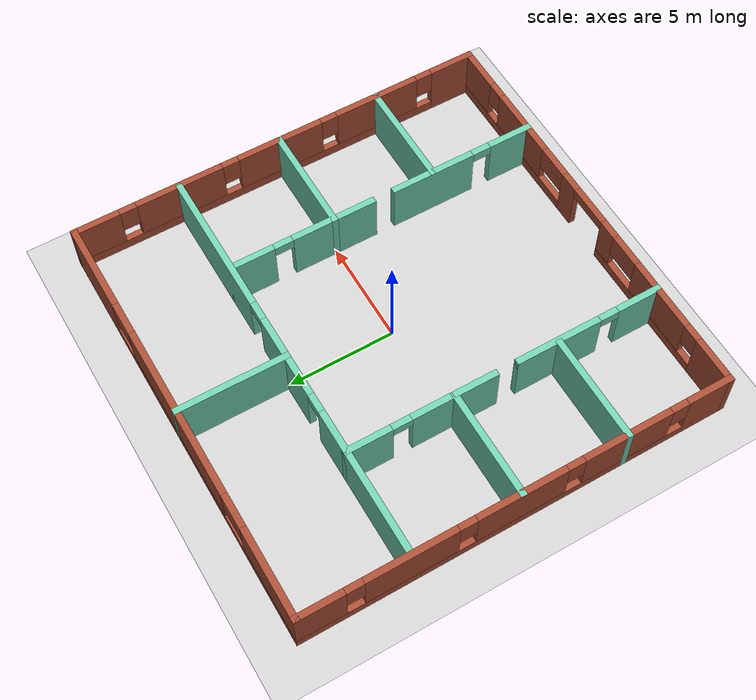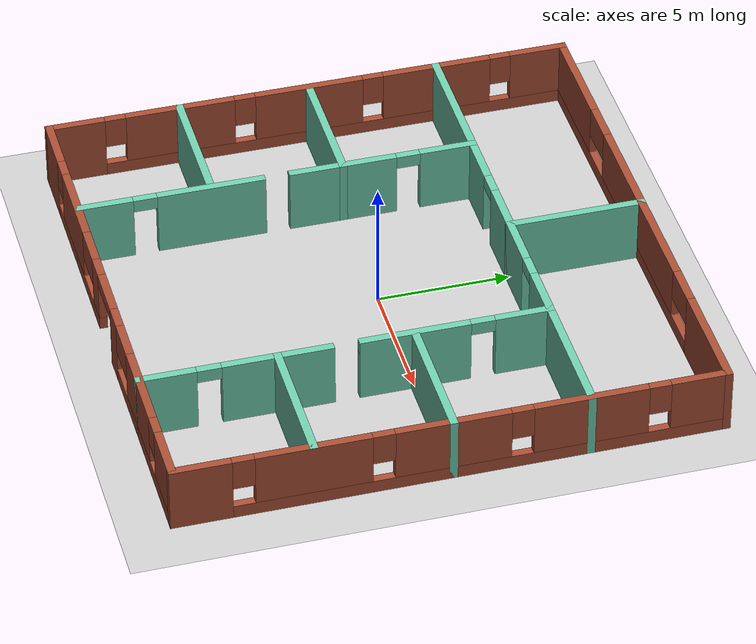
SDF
<sdf version="1.7">
 <world name="default">
  <model name="ground_plane">
   <static>1</static>
   <link name="link">
    <collision name="collision">
     <geometry><plane><normal>0 0 1</normal><size>100 100</size></plane></geometry>
     <surface>
      <contact><collide_bitmask>65535</collide_bitmask></contact>
      <friction><ode><mu>100</mu><mu2>50</mu2></ode></friction>
     </surface>
    </collision>
    <visual name="visual">
     <cast_shadows>0</cast_shadows>
     <geometry><plane><normal>0 0 1</normal><size>100 100</size></plane></geometry>
     <material>
      <script><uri>file://media/materials/scripts/gazebo.material</uri><name>Gazebo/Grey</name></script>
     </material>
    </visual>
   </link>
  </model>
  <model name="Building">
   <link name="Wall_0">
    <pose>0 10 0 0 -0 3.14159</pose>
    <visual name="Wall_0_Visual_0">
     <pose>-7.975 0 1.25 0 -0 0</pose>
     <geometry><box><size>4.35 0.3 2.5</size></box></geometry>
     <material>
      <script><uri>file://media/materials/scripts/gazebo.material</uri><name>Gazebo/Bricks</name></script>
      <ambient>1 1 1 1</ambient>
     </material>
     <meta><layer>0</layer></meta>
    </visual>
    <collision name="Wall_0_Collision_0">
     <geometry><box><size>4.35 0.3 2.5</size></box></geometry>
     <pose>-7.975 0 1.25 0 -0 0</pose>
    </collision>
    <visual name="Wall_0_Visual_1">
     <pose>2.175 0 0.25 0 -0 0</pose>
     <geometry><box><size>15.95 0.3 0.5</size></box></geometry>
     <material>
      <script><uri>file://media/materials/scripts/gazebo.material</uri><name>Gazebo/Bricks</name></script>
      <ambient>1 1 1 1</ambient>
     </material>
     <meta><layer>0</layer></meta>
    </visual>
    <collision name="Wall_0_Collision_1">
     <geometry><box><size>15.95 0.3 0.5</size></box></geometry>
     <pose>2.175 0 0.25 0 -0 0</pose>
    </collision>
    <visual name="Wall_0_Visual_2">
     <pose>0 0 1.5 0 -0 0</pose>
     <geometry><box><size>8.4 0.3 2</size></box></geometry>
     <material>
      <script><uri>file://media/materials/scripts/gazebo.material</uri><name>Gazebo/Bricks</name></script>
      <ambient>1 1 1 1</ambient>
     </material>
     <meta><layer>0</layer></meta>
    </visual>
    <collision name="Wall_0_Collision_2">
     <geometry><box><size>8.4 0.3 2</size></box></geometry>
     <pose>0 0 1.5 0 -0 0</pose>
    </collision>
    <visual name="Wall_0_Visual_3">
     <pose>7.975 0 1.5 0 -0 0</pose>
     <geometry><box><size>4.35 0.3 2</size></box></geometry>
     <material>
      <script><uri>file://media/materials/scripts/gazebo.material</uri><name>Gazebo/Bricks</name></script>
      <ambient>1 1 1 1</ambient>
     </material>
     <meta><layer>0</layer></meta>
    </visual>
    <collision name="Wall_0_Collision_3">
     <geometry><box><size>4.35 0.3 2</size></box></geometry>
     <pose>7.975 0 1.5 0 -0 0</pose>
    </collision>
    <visual name="Wall_0_Visual_4">
     <pose>-5 0 1.9 0 -0 0</pose>
     <geometry><box><size>1.6 0.3 1.2</size></box></geometry>
     <material>
      <script><uri>file://media/materials/scripts/gazebo.material</uri><name>Gazebo/Bricks</name></script>
      <ambient>1 1 1 1</ambient>
     </material>
     <meta><layer>0</layer></meta>
    </visual>
    <collision name="Wall_0_Collision_4">
     <geometry><box><size>1.6 0.3 1.2</size></box></geometry>
     <pose>-5 0 1.9 0 -0 0</pose>
    </collision>
    <visual name="Wall_0_Visual_5">
     <pose>5 0 1.9 0 -0 0</pose>
     <geometry><box><size>1.6 0.3 1.2</size></box></geometry>
     <material>
      <script><uri>file://media/materials/scripts/gazebo.material</uri><name>Gazebo/Bricks</name></script>
      <ambient>1 1 1 1</ambient>
     </material>
     <meta><layer>0</layer></meta>
    </visual>
    <collision name="Wall_0_Collision_5">
     <geometry><box><size>1.6 0.3 1.2</size></box></geometry>
     <pose>5 0 1.9 0 -0 0</pose>
    </collision>
   </link>
   <link name="Wall_12">
    <pose>-5 -2.5 0 0 -0 1.5708</pose>
    <visual name="Wall_12_Visual_0">
     <pose>-6.55 0 1.25 0 -0 0</pose>
     <geometry><box><size>2.2 0.3 2.5</size></box></geometry>
     <material>
      <script><uri>file://media/materials/scripts/gazebo.material</uri><name>Gazebo/Grey</name></script>
      <ambient>0.435294 0.796078 0.67451 1</ambient>
     </material>
     <meta><layer>0</layer></meta>
    </visual>
    <collision name="Wall_12_Collision_0">
     <geometry><box><size>2.2 0.3 2.5</size></box></geometry>
     <pose>-6.55 0 1.25 0 -0 0</pose>
    </collision>
    <visual name="Wall_12_Visual_1">
     <pose>-2.5 0 1.25 0 -0 0</pose>
     <geometry><box><size>4.1 0.3 2.5</size></box></geometry>
     <material>
      <script><uri>file://media/materials/scripts/gazebo.material</uri><name>Gazebo/Grey</name></script>
      <ambient>0.435294 0.796078 0.67451 1</ambient>
     </material>
     <meta><layer>0</layer></meta>
    </visual>
    <collision name="Wall_12_Collision_1">
     <geometry><box><size>4.1 0.3 2.5</size></box></geometry>
     <pose>-2.5 0 1.25 0 -0 0</pose>
    </collision>
    <visual name="Wall_12_Visual_2">
     <pose>2.5 0 1.25 0 -0 0</pose>
     <geometry><box><size>4.1 0.3 2.5</size></box></geometry>
     <material>
      <script><uri>file://media/materials/scripts/gazebo.material</uri><name>Gazebo/Grey</name></script>
      <ambient>0.435294 0.796078 0.67451 1</ambient>
     </material>
     <meta><layer>0</layer></meta>
    </visual>
    <collision name="Wall_12_Collision_2">
     <geometry><box><size>4.1 0.3 2.5</size></box></geometry>
     <pose>2.5 0 1.25 0 -0 0</pose>
    </collision>
    <visual name="Wall_12_Visual_3">
     <pose>6.55 0 1.25 0 -0 0</pose>
     <geometry><box><size>2.2 0.3 2.5</size></box></geometry>
     <material>
      <script><uri>file://media/materials/scripts/gazebo.material</uri><name>Gazebo/Grey</name></script>
      <ambient>0.435294 0.796078 0.67451 1</ambient>
     </material>
     <meta><layer>0</layer></meta>
    </visual>
    <collision name="Wall_12_Collision_3">
     <geometry><box><size>2.2 0.3 2.5</size></box></geometry>
     <pose>6.55 0 1.25 0 -0 0</pose>
    </collision>
    <visual name="Wall_12_Visual_4">
     <pose>-5 0 2.25 0 -0 0</pose>
     <geometry><box><size>0.9 0.3 0.5</size></box></geometry>
     <material>
      <script><uri>file://media/materials/scripts/gazebo.material</uri><name>Gazebo/Grey</name></script>
      <ambient>0.435294 0.796078 0.67451 1</ambient>
     </material>
     <meta><layer>0</layer></meta>
    </visual>
    <collision name="Wall_12_Collision_4">
     <geometry><box><size>0.9 0.3 0.5</size></box></geometry>
     <pose>-5 0 2.25 0 -0 0</pose>
    </collision>
    <visual name="Wall_12_Visual_5">
     <pose>-0.45 0 2.25 0 -0 0</pose>
     <geometry><box><size>0 0.3 0.5</size></box></geometry>
     <material>
      <script><uri>file://media/materials/scripts/gazebo.material</uri><name>Gazebo/Grey</name></script>
      <ambient>0.435294 0.796078 0.67451 1</ambient>
     </material>
     <meta><layer>0</layer></meta>
    </visual>
    <collision name="Wall_12_Collision_5">
     <geometry><box><size>0 0.3 0.5</size></box></geometry>
     <pose>-0.45 0 2.25 0 -0 0</pose>
    </collision>
    <visual name="Wall_12_Visual_6">
     <pose>5 0 2.25 0 -0 0</pose>
     <geometry><box><size>0.9 0.3 0.5</size></box></geometry>
     <material>
      <script><uri>file://media/materials/scripts/gazebo.material</uri><name>Gazebo/Grey</name></script>
      <ambient>0.435294 0.796078 0.67451 1</ambient>
     </material>
     <meta><layer>0</layer></meta>
    </visual>
    <collision name="Wall_12_Collision_6">
     <geometry><box><size>0.9 0.3 0.5</size></box></geometry>
     <pose>5 0 2.25 0 -0 0</pose>
    </collision>
   </link>
   <link name="Wall_14">
    <pose>5 -2.5 0 0 0 -1.5708</pose>
    <visual name="Wall_14_Visual_0">
     <pose>-6.55 0 1.25 0 -0 0</pose>
     <geometry><box><size>2.2 0.3 2.5</size></box></geometry>
     <material>
      <script><uri>file://media/materials/scripts/gazebo.material</uri><name>Gazebo/Grey</name></script>
      <ambient>0.435294 0.796078 0.67451 1</ambient>
     </material>
     <meta><layer>0</layer></meta>
    </visual>
    <collision name="Wall_14_Collision_0">
     <geometry><box><size>2.2 0.3 2.5</size></box></geometry>
     <pose>-6.55 0 1.25 0 -0 0</pose>
    </collision>
    <visual name="Wall_14_Visual_1">
     <pose>-2.5 0 1.25 0 -0 0</pose>
     <geometry><box><size>4.1 0.3 2.5</size></box></geometry>
     <material>
      <script><uri>file://media/materials/scripts/gazebo.material</uri><name>Gazebo/Grey</name></script>
      <ambient>0.435294 0.796078 0.67451 1</ambient>
     </material>
     <meta><layer>0</layer></meta>
    </visual>
    <collision name="Wall_14_Collision_1">
     <geometry><box><size>4.1 0.3 2.5</size></box></geometry>
     <pose>-2.5 0 1.25 0 -0 0</pose>
    </collision>
    <visual name="Wall_14_Visual_2">
     <pose>2.5 0 1.25 0 -0 0</pose>
     <geometry><box><size>4.1 0.3 2.5</size></box></geometry>
     <material>
      <script><uri>file://media/materials/scripts/gazebo.material</uri><name>Gazebo/Grey</name></script>
      <ambient>0.435294 0.796078 0.67451 1</ambient>
     </material>
     <meta><layer>0</layer></meta>
    </visual>
    <collision name="Wall_14_Collision_2">
     <geometry><box><size>4.1 0.3 2.5</size></box></geometry>
     <pose>2.5 0 1.25 0 -0 0</pose>
    </collision>
    <visual name="Wall_14_Visual_3">
     <pose>6.55 0 1.25 0 -0 0</pose>
     <geometry><box><size>2.2 0.3 2.5</size></box></geometry>
     <material>
      <script><uri>file://media/materials/scripts/gazebo.material</uri><name>Gazebo/Grey</name></script>
      <ambient>0.435294 0.796078 0.67451 1</ambient>
     </material>
     <meta><layer>0</layer></meta>
    </visual>
    <collision name="Wall_14_Collision_3">
     <geometry><box><size>2.2 0.3 2.5</size></box></geometry>
     <pose>6.55 0 1.25 0 -0 0</pose>
    </collision>
    <visual name="Wall_14_Visual_4">
     <pose>-5 0 2.25 0 -0 0</pose>
     <geometry><box><size>0.9 0.3 0.5</size></box></geometry>
     <material>
      <script><uri>file://media/materials/scripts/gazebo.material</uri><name>Gazebo/Grey</name></script>
      <ambient>0.435294 0.796078 0.67451 1</ambient>
     </material>
     <meta><layer>0</layer></meta>
    </visual>
    <collision name="Wall_14_Collision_4">
     <geometry><box><size>0.9 0.3 0.5</size></box></geometry>
     <pose>-5 0 2.25 0 -0 0</pose>
    </collision>
    <visual name="Wall_14_Visual_5">
     <pose>-0.45 0 2.25 0 -0 0</pose>
     <geometry><box><size>0 0.3 0.5</size></box></geometry>
     <material>
      <script><uri>file://media/materials/scripts/gazebo.material</uri><name>Gazebo/Grey</name></script>
      <ambient>0.435294 0.796078 0.67451 1</ambient>
     </material>
     <meta><layer>0</layer></meta>
    </visual>
    <collision name="Wall_14_Collision_5">
     <geometry><box><size>0 0.3 0.5</size></box></geometry>
     <pose>-0.45 0 2.25 0 -0 0</pose>
    </collision>
    <visual name="Wall_14_Visual_6">
     <pose>5 0 2.25 0 -0 0</pose>
     <geometry><box><size>0.9 0.3 0.5</size></box></geometry>
     <material>
      <script><uri>file://media/materials/scripts/gazebo.material</uri><name>Gazebo/Grey</name></script>
      <ambient>0.435294 0.796078 0.67451 1</ambient>
     </material>
     <meta><layer>0</layer></meta>
    </visual>
    <collision name="Wall_14_Collision_6">
     <geometry><box><size>0.9 0.3 0.5</size></box></geometry>
     <pose>5 0 2.25 0 -0 0</pose>
    </collision>
   </link>
   <link name="Wall_16">
    <collision name="Wall_16_Collision">
     <geometry><box><size>5.3 0.3 2.5</size></box></geometry>
     <pose>0 0 1.25 0 -0 0</pose>
    </collision>
    <visual name="Wall_16_Visual">
     <pose>0 0 1.25 0 -0 0</pose>
     <geometry><box><size>5.3 0.3 2.5</size></box></geometry>
     <material>
      <script><uri>file://media/materials/scripts/gazebo.material</uri><name>Gazebo/Grey</name></script>
      <ambient>0.435294 0.796078 0.67451 1</ambient>
     </material>
     <meta><layer>0</layer></meta>
    </visual>
    <pose>0 7.5 0 0 -0 1.5708</pose>
   </link>
   <link name="Wall_19">
    <collision name="Wall_19_Collision">
     <geometry><box><size>5.3 0.3 2.5</size></box></geometry>
     <pose>0 0 1.25 0 -0 0</pose>
    </collision>
    <visual name="Wall_19_Visual">
     <pose>0 0 1.25 0 -0 0</pose>
     <geometry><box><size>5.3 0.3 2.5</size></box></geometry>
     <material>
      <script><uri>file://media/materials/scripts/gazebo.material</uri><name>Gazebo/Grey</name></script>
      <ambient>0.435294 0.796078 0.67451 1</ambient>
     </material>
     <meta><layer>0</layer></meta>
    </visual>
    <pose>-7.5 -5 0 0 -0 0</pose>
   </link>
   <link name="Wall_2">
    <pose>0 -10 0 0 -0 0</pose>
    <visual name="Wall_2_Visual_0">
     <pose>-9.025 0 1.25 0 -0 0</pose>
     <geometry><box><size>2.25 0.3 2.5</size></box></geometry>
     <material>
      <script><uri>file://media/materials/scripts/gazebo.material</uri><name>Gazebo/Bricks</name></script>
      <ambient>1 1 1 1</ambient>
     </material>
     <meta><layer>0</layer></meta>
    </visual>
    <collision name="Wall_2_Collision_0">
     <geometry><box><size>2.25 0.3 2.5</size></box></geometry>
     <pose>-9.025 0 1.25 0 -0 0</pose>
    </collision>
    <visual name="Wall_2_Visual_1">
     <pose>1.46321 0 1.25 0 -0 0</pose>
     <geometry><box><size>0.973589 0.3 2.5</size></box></geometry>
     <material>
      <script><uri>file://media/materials/scripts/gazebo.material</uri><name>Gazebo/Bricks</name></script>
      <ambient>1 1 1 1</ambient>
     </material>
     <meta><layer>0</layer></meta>
    </visual>
    <collision name="Wall_2_Collision_1">
     <geometry><box><size>0.973589 0.3 2.5</size></box></geometry>
     <pose>1.46321 0 1.25 0 -0 0</pose>
    </collision>
    <visual name="Wall_2_Visual_2">
     <pose>-4.4618 0 0.25 0 -0 0</pose>
     <geometry><box><size>6.87641 0.3 0.5</size></box></geometry>
     <material>
      <script><uri>file://media/materials/scripts/gazebo.material</uri><name>Gazebo/Bricks</name></script>
      <ambient>1 1 1 1</ambient>
     </material>
     <meta><layer>0</layer></meta>
    </visual>
    <collision name="Wall_2_Collision_2">
     <geometry><box><size>6.87641 0.3 0.5</size></box></geometry>
     <pose>-4.4618 0 0.25 0 -0 0</pose>
    </collision>
    <visual name="Wall_2_Visual_3">
     <pose>6.05 0 0.25 0 -0 0</pose>
     <geometry><box><size>8.2 0.3 0.5</size></box></geometry>
     <material>
      <script><uri>file://media/materials/scripts/gazebo.material</uri><name>Gazebo/Bricks</name></script>
      <ambient>1 1 1 1</ambient>
     </material>
     <meta><layer>0</layer></meta>
    </visual>
    <collision name="Wall_2_Collision_3">
     <geometry><box><size>8.2 0.3 0.5</size></box></geometry>
     <pose>6.05 0 0.25 0 -0 0</pose>
    </collision>
    <visual name="Wall_2_Visual_4">
     <pose>-5.325 0 1.5 0 -0 0</pose>
     <geometry><box><size>3.55 0.3 2</size></box></geometry>
     <material>
      <script><uri>file://media/materials/scripts/gazebo.material</uri><name>Gazebo/Bricks</name></script>
      <ambient>1 1 1 1</ambient>
     </material>
     <meta><layer>0</layer></meta>
    </visual>
    <collision name="Wall_2_Collision_4">
     <geometry><box><size>3.55 0.3 2</size></box></geometry>
     <pose>-5.325 0 1.5 0 -0 0</pose>
    </collision>
    <visual name="Wall_2_Visual_5">
     <pose>-1.4868 0 1.5 0 -0 0</pose>
     <geometry><box><size>0.926411 0.3 2</size></box></geometry>
     <material>
      <script><uri>file://media/materials/scripts/gazebo.material</uri><name>Gazebo/Bricks</name></script>
      <ambient>1 1 1 1</ambient>
     </material>
     <meta><layer>0</layer></meta>
    </visual>
    <collision name="Wall_2_Collision_5">
     <geometry><box><size>0.926411 0.3 2</size></box></geometry>
     <pose>-1.4868 0 1.5 0 -0 0</pose>
    </collision>
    <visual name="Wall_2_Visual_6">
     <pose>-1.4868 0 1.5 0 -0 0</pose>
     <geometry><box><size>0.926411 0.3 2</size></box></geometry>
     <material>
      <script><uri>file://media/materials/scripts/gazebo.material</uri><name>Gazebo/Bricks</name></script>
      <ambient>1 1 1 1</ambient>
     </material>
     <meta><layer>0</layer></meta>
    </visual>
    <collision name="Wall_2_Collision_6">
     <geometry><box><size>0.926411 0.3 2</size></box></geometry>
     <pose>-1.4868 0 1.5 0 -0 0</pose>
    </collision>
    <visual name="Wall_2_Visual_7">
     <pose>5.325 0 1.5 0 -0 0</pose>
     <geometry><box><size>3.55 0.3 2</size></box></geometry>
     <material>
      <script><uri>file://media/materials/scripts/gazebo.material</uri><name>Gazebo/Bricks</name></script>
      <ambient>1 1 1 1</ambient>
     </material>
     <meta><layer>0</layer></meta>
    </visual>
    <collision name="Wall_2_Collision_7">
     <geometry><box><size>3.55 0.3 2</size></box></geometry>
     <pose>5.325 0 1.5 0 -0 0</pose>
    </collision>
    <visual name="Wall_2_Visual_8">
     <pose>9.025 0 1.5 0 -0 0</pose>
     <geometry><box><size>2.25 0.3 2</size></box></geometry>
     <material>
      <script><uri>file://media/materials/scripts/gazebo.material</uri><name>Gazebo/Bricks</name></script>
      <ambient>1 1 1 1</ambient>
     </material>
     <meta><layer>0</layer></meta>
    </visual>
    <collision name="Wall_2_Collision_8">
     <geometry><box><size>2.25 0.3 2</size></box></geometry>
     <pose>9.025 0 1.5 0 -0 0</pose>
    </collision>
    <visual name="Wall_2_Visual_9">
     <pose>-7.5 0 1.9 0 -0 0</pose>
     <geometry><box><size>0.8 0.3 1.2</size></box></geometry>
     <material>
      <script><uri>file://media/materials/scripts/gazebo.material</uri><name>Gazebo/Bricks</name></script>
      <ambient>1 1 1 1</ambient>
     </material>
     <meta><layer>0</layer></meta>
    </visual>
    <collision name="Wall_2_Collision_9">
     <geometry><box><size>0.8 0.3 1.2</size></box></geometry>
     <pose>-7.5 0 1.9 0 -0 0</pose>
    </collision>
    <visual name="Wall_2_Visual_10">
     <pose>2.75 0 1.9 0 -0 0</pose>
     <geometry><box><size>1.6 0.3 1.2</size></box></geometry>
     <material>
      <script><uri>file://media/materials/scripts/gazebo.material</uri><name>Gazebo/Bricks</name></script>
      <ambient>1 1 1 1</ambient>
     </material>
     <meta><layer>0</layer></meta>
    </visual>
    <collision name="Wall_2_Collision_10">
     <geometry><box><size>1.6 0.3 1.2</size></box></geometry>
     <pose>2.75 0 1.9 0 -0 0</pose>
    </collision>
    <visual name="Wall_2_Visual_11">
     <pose>-2.75 0 1.9 0 -0 0</pose>
     <geometry><box><size>1.6 0.3 1.2</size></box></geometry>
     <material>
      <script><uri>file://media/materials/scripts/gazebo.material</uri><name>Gazebo/Bricks</name></script>
      <ambient>1 1 1 1</ambient>
     </material>
     <meta><layer>0</layer></meta>
    </visual>
    <collision name="Wall_2_Collision_11">
     <geometry><box><size>1.6 0.3 1.2</size></box></geometry>
     <pose>-2.75 0 1.9 0 -0 0</pose>
    </collision>
    <visual name="Wall_2_Visual_12">
     <pose>7.5 0 1.9 0 -0 0</pose>
     <geometry><box><size>0.8 0.3 1.2</size></box></geometry>
     <material>
      <script><uri>file://media/materials/scripts/gazebo.material</uri><name>Gazebo/Bricks</name></script>
      <ambient>1 1 1 1</ambient>
     </material>
     <meta><layer>0</layer></meta>
    </visual>
    <collision name="Wall_2_Collision_12">
     <geometry><box><size>0.8 0.3 1.2</size></box></geometry>
     <pose>7.5 0 1.9 0 -0 0</pose>
    </collision>
    <visual name="Wall_2_Visual_13">
     <pose>-0.023589 0 2.25 0 -0 0</pose>
     <geometry><box><size>2 0.3 0.5</size></box></geometry>
     <material>
      <script><uri>file://media/materials/scripts/gazebo.material</uri><name>Gazebo/Bricks</name></script>
      <ambient>1 1 1 1</ambient>
     </material>
     <meta><layer>0</layer></meta>
    </visual>
    <collision name="Wall_2_Collision_13">
     <geometry><box><size>2 0.3 0.5</size></box></geometry>
     <pose>-0.023589 0 2.25 0 -0 0</pose>
    </collision>
    <visual name="Wall_2_Visual_14">
     <pose>-0.023589 0 2.25 0 -0 0</pose>
     <geometry><box><size>2 0.3 0.5</size></box></geometry>
     <material>
      <script><uri>file://media/materials/scripts/gazebo.material</uri><name>Gazebo/Bricks</name></script>
      <ambient>1 1 1 1</ambient>
     </material>
     <meta><layer>0</layer></meta>
    </visual>
    <collision name="Wall_2_Collision_14">
     <geometry><box><size>2 0.3 0.5</size></box></geometry>
     <pose>-0.023589 0 2.25 0 -0 0</pose>
    </collision>
   </link>
   <link name="Wall_21">
    <collision name="Wall_21_Collision">
     <geometry><box><size>5.3 0.3 2.5</size></box></geometry>
     <pose>0 0 1.25 0 -0 0</pose>
    </collision>
    <visual name="Wall_21_Visual">
     <pose>0 0 1.25 0 -0 0</pose>
     <geometry><box><size>5.3 0.3 2.5</size></box></geometry>
     <material>
      <script><uri>file://media/materials/scripts/gazebo.material</uri><name>Gazebo/Grey</name></script>
      <ambient>0.435294 0.796078 0.67451 1</ambient>
     </material>
     <meta><layer>0</layer></meta>
    </visual>
    <pose>7.5 -5 0 0 -0 0</pose>
   </link>
   <link name="Wall_22">
    <collision name="Wall_22_Collision">
     <geometry><box><size>0.268816 0.15 2.5</size></box></geometry>
     <pose>0 0 1.25 0 -0 0</pose>
    </collision>
    <visual name="Wall_22_Visual">
     <pose>0 0 1.25 0 -0 0</pose>
     <geometry><box><size>0.268816 0.15 2.5</size></box></geometry>
     <material>
      <script><uri>file://media/materials/scripts/gazebo.material</uri><name>Gazebo/Grey</name></script>
      <ambient>1 1 1 1</ambient>
     </material>
     <meta><layer>0</layer></meta>
    </visual>
    <pose>9.95756 -4.95843 0 0 -0 2.36663</pose>
   </link>
   <link name="Wall_23">
    <collision name="Wall_23_Collision">
     <geometry><box><size>0.268816 0.15 2.5</size></box></geometry>
     <pose>0 0 1.25 0 -0 0</pose>
    </collision>
    <visual name="Wall_23_Visual">
     <pose>0 0 1.25 0 -0 0</pose>
     <geometry><box><size>0.268816 0.15 2.5</size></box></geometry>
     <material>
      <script><uri>file://media/materials/scripts/gazebo.material</uri><name>Gazebo/Grey</name></script>
      <ambient>1 1 1 1</ambient>
     </material>
     <meta><layer>0</layer></meta>
    </visual>
    <pose>9.95756 -4.95843 0 0 0 -0.77496</pose>
   </link>
   <link name="Wall_25">
    <collision name="Wall_25_Collision">
     <geometry><box><size>5.3 0.3 2.5</size></box></geometry>
     <pose>0 0 1.25 0 -0 0</pose>
    </collision>
    <visual name="Wall_25_Visual">
     <pose>0 0 1.25 0 -0 0</pose>
     <geometry><box><size>5.3 0.3 2.5</size></box></geometry>
     <material>
      <script><uri>file://media/materials/scripts/gazebo.material</uri><name>Gazebo/Grey</name></script>
      <ambient>0.435294 0.796078 0.67451 1</ambient>
     </material>
     <meta><layer>0</layer></meta>
    </visual>
    <pose>-7.5 0 0 0 -0 0</pose>
   </link>
   <link name="Wall_27">
    <collision name="Wall_27_Collision">
     <geometry><box><size>5.3 0.3 2.5</size></box></geometry>
     <pose>0 0 1.25 0 -0 0</pose>
    </collision>
    <visual name="Wall_27_Visual">
     <pose>0 0 1.25 0 -0 0</pose>
     <geometry><box><size>5.3 0.3 2.5</size></box></geometry>
     <material>
      <script><uri>file://media/materials/scripts/gazebo.material</uri><name>Gazebo/Grey</name></script>
      <ambient>0.435294 0.796078 0.67451 1</ambient>
     </material>
     <meta><layer>0</layer></meta>
    </visual>
    <pose>7.5 0 0 0 -0 0</pose>
   </link>
   <link name="Wall_5">
    <pose>-10 0 0 0 -0 1.5708</pose>
    <visual name="Wall_5_Visual_0">
     <pose>-9.025 0 1.25 0 -0 0</pose>
     <geometry><box><size>2.25 0.3 2.5</size></box></geometry>
     <material>
      <script><uri>file://media/materials/scripts/gazebo.material</uri><name>Gazebo/Bricks</name></script>
      <ambient>1 1 1 1</ambient>
     </material>
     <meta><layer>0</layer></meta>
    </visual>
    <collision name="Wall_5_Collision_0">
     <geometry><box><size>2.25 0.3 2.5</size></box></geometry>
     <pose>-9.025 0 1.25 0 -0 0</pose>
    </collision>
    <visual name="Wall_5_Visual_1">
     <pose>1.125 0 0.25 0 -0 0</pose>
     <geometry><box><size>18.05 0.3 0.5</size></box></geometry>
     <material>
      <script><uri>file://media/materials/scripts/gazebo.material</uri><name>Gazebo/Bricks</name></script>
      <ambient>1 1 1 1</ambient>
     </material>
     <meta><layer>0</layer></meta>
    </visual>
    <collision name="Wall_5_Collision_1">
     <geometry><box><size>18.05 0.3 0.5</size></box></geometry>
     <pose>1.125 0 0.25 0 -0 0</pose>
    </collision>
    <visual name="Wall_5_Visual_2">
     <pose>-5 0 1.5 0 -0 0</pose>
     <geometry><box><size>4.2 0.3 2</size></box></geometry>
     <material>
      <script><uri>file://media/materials/scripts/gazebo.material</uri><name>Gazebo/Bricks</name></script>
      <ambient>1 1 1 1</ambient>
     </material>
     <meta><layer>0</layer></meta>
    </visual>
    <collision name="Wall_5_Collision_2">
     <geometry><box><size>4.2 0.3 2</size></box></geometry>
     <pose>-5 0 1.5 0 -0 0</pose>
    </collision>
    <visual name="Wall_5_Visual_3">
     <pose>-0.002642 0 1.5 0 -0 0</pose>
     <geometry><box><size>4.19472 0.3 2</size></box></geometry>
     <material>
      <script><uri>file://media/materials/scripts/gazebo.material</uri><name>Gazebo/Bricks</name></script>
      <ambient>1 1 1 1</ambient>
     </material>
     <meta><layer>0</layer></meta>
    </visual>
    <collision name="Wall_5_Collision_3">
     <geometry><box><size>4.19472 0.3 2</size></box></geometry>
     <pose>-0.002642 0 1.5 0 -0 0</pose>
    </collision>
    <visual name="Wall_5_Visual_4">
     <pose>4.99736 0 1.5 0 -0 0</pose>
     <geometry><box><size>4.20528 0.3 2</size></box></geometry>
     <material>
      <script><uri>file://media/materials/scripts/gazebo.material</uri><name>Gazebo/Bricks</name></script>
      <ambient>1 1 1 1</ambient>
     </material>
     <meta><layer>0</layer></meta>
    </visual>
    <collision name="Wall_5_Collision_4">
     <geometry><box><size>4.20528 0.3 2</size></box></geometry>
     <pose>4.99736 0 1.5 0 -0 0</pose>
    </collision>
    <visual name="Wall_5_Visual_5">
     <pose>9.025 0 1.5 0 -0 0</pose>
     <geometry><box><size>2.25 0.3 2</size></box></geometry>
     <material>
      <script><uri>file://media/materials/scripts/gazebo.material</uri><name>Gazebo/Bricks</name></script>
      <ambient>1 1 1 1</ambient>
     </material>
     <meta><layer>0</layer></meta>
    </visual>
    <collision name="Wall_5_Collision_5">
     <geometry><box><size>2.25 0.3 2</size></box></geometry>
     <pose>9.025 0 1.5 0 -0 0</pose>
    </collision>
    <visual name="Wall_5_Visual_6">
     <pose>-7.5 0 1.9 0 -0 0</pose>
     <geometry><box><size>0.8 0.3 1.2</size></box></geometry>
     <material>
      <script><uri>file://media/materials/scripts/gazebo.material</uri><name>Gazebo/Bricks</name></script>
      <ambient>1 1 1 1</ambient>
     </material>
     <meta><layer>0</layer></meta>
    </visual>
    <collision name="Wall_5_Collision_6">
     <geometry><box><size>0.8 0.3 1.2</size></box></geometry>
     <pose>-7.5 0 1.9 0 -0 0</pose>
    </collision>
    <visual name="Wall_5_Visual_7">
     <pose>-2.5 0 1.9 0 -0 0</pose>
     <geometry><box><size>0.8 0.3 1.2</size></box></geometry>
     <material>
      <script><uri>file://media/materials/scripts/gazebo.material</uri><name>Gazebo/Bricks</name></script>
      <ambient>1 1 1 1</ambient>
     </material>
     <meta><layer>0</layer></meta>
    </visual>
    <collision name="Wall_5_Collision_7">
     <geometry><box><size>0.8 0.3 1.2</size></box></geometry>
     <pose>-2.5 0 1.9 0 -0 0</pose>
    </collision>
    <visual name="Wall_5_Visual_8">
     <pose>2.49471 0 1.9 0 -0 0</pose>
     <geometry><box><size>0.8 0.3 1.2</size></box></geometry>
     <material>
      <script><uri>file://media/materials/scripts/gazebo.material</uri><name>Gazebo/Bricks</name></script>
      <ambient>1 1 1 1</ambient>
     </material>
     <meta><layer>0</layer></meta>
    </visual>
    <collision name="Wall_5_Collision_8">
     <geometry><box><size>0.8 0.3 1.2</size></box></geometry>
     <pose>2.49471 0 1.9 0 -0 0</pose>
    </collision>
    <visual name="Wall_5_Visual_9">
     <pose>7.5 0 1.9 0 -0 0</pose>
     <geometry><box><size>0.8 0.3 1.2</size></box></geometry>
     <material>
      <script><uri>file://media/materials/scripts/gazebo.material</uri><name>Gazebo/Bricks</name></script>
      <ambient>1 1 1 1</ambient>
     </material>
     <meta><layer>0</layer></meta>
    </visual>
    <collision name="Wall_5_Collision_9">
     <geometry><box><size>0.8 0.3 1.2</size></box></geometry>
     <pose>7.5 0 1.9 0 -0 0</pose>
    </collision>
   </link>
   <link name="Wall_7">
    <pose>10 0 0 0 -0 1.5708</pose>
    <visual name="Wall_7_Visual_0">
     <pose>-9.025 0 1.25 0 -0 0</pose>
     <geometry><box><size>2.25 0.3 2.5</size></box></geometry>
     <material>
      <script><uri>file://media/materials/scripts/gazebo.material</uri><name>Gazebo/Bricks</name></script>
      <ambient>1 1 1 1</ambient>
     </material>
     <meta><layer>0</layer></meta>
    </visual>
    <collision name="Wall_7_Collision_0">
     <geometry><box><size>2.25 0.3 2.5</size></box></geometry>
     <pose>-9.025 0 1.25 0 -0 0</pose>
    </collision>
    <visual name="Wall_7_Visual_1">
     <pose>1.125 0 0.25 0 -0 0</pose>
     <geometry><box><size>18.05 0.3 0.5</size></box></geometry>
     <material>
      <script><uri>file://media/materials/scripts/gazebo.material</uri><name>Gazebo/Bricks</name></script>
      <ambient>1 1 1 1</ambient>
     </material>
     <meta><layer>0</layer></meta>
    </visual>
    <collision name="Wall_7_Collision_1">
     <geometry><box><size>18.05 0.3 0.5</size></box></geometry>
     <pose>1.125 0 0.25 0 -0 0</pose>
    </collision>
    <visual name="Wall_7_Visual_2">
     <pose>-5 0 1.5 0 -0 0</pose>
     <geometry><box><size>4.2 0.3 2</size></box></geometry>
     <material>
      <script><uri>file://media/materials/scripts/gazebo.material</uri><name>Gazebo/Bricks</name></script>
      <ambient>1 1 1 1</ambient>
     </material>
     <meta><layer>0</layer></meta>
    </visual>
    <collision name="Wall_7_Collision_2">
     <geometry><box><size>4.2 0.3 2</size></box></geometry>
     <pose>-5 0 1.5 0 -0 0</pose>
    </collision>
    <visual name="Wall_7_Visual_3">
     <pose>0 0 1.5 0 -0 0</pose>
     <geometry><box><size>4.2 0.3 2</size></box></geometry>
     <material>
      <script><uri>file://media/materials/scripts/gazebo.material</uri><name>Gazebo/Bricks</name></script>
      <ambient>1 1 1 1</ambient>
     </material>
     <meta><layer>0</layer></meta>
    </visual>
    <collision name="Wall_7_Collision_3">
     <geometry><box><size>4.2 0.3 2</size></box></geometry>
     <pose>0 0 1.5 0 -0 0</pose>
    </collision>
    <visual name="Wall_7_Visual_4">
     <pose>5 0 1.5 0 -0 0</pose>
     <geometry><box><size>4.2 0.3 2</size></box></geometry>
     <material>
      <script><uri>file://media/materials/scripts/gazebo.material</uri><name>Gazebo/Bricks</name></script>
      <ambient>1 1 1 1</ambient>
     </material>
     <meta><layer>0</layer></meta>
    </visual>
    <collision name="Wall_7_Collision_4">
     <geometry><box><size>4.2 0.3 2</size></box></geometry>
     <pose>5 0 1.5 0 -0 0</pose>
    </collision>
    <visual name="Wall_7_Visual_5">
     <pose>9.025 0 1.5 0 -0 0</pose>
     <geometry><box><size>2.25 0.3 2</size></box></geometry>
     <material>
      <script><uri>file://media/materials/scripts/gazebo.material</uri><name>Gazebo/Bricks</name></script>
      <ambient>1 1 1 1</ambient>
     </material>
     <meta><layer>0</layer></meta>
    </visual>
    <collision name="Wall_7_Collision_5">
     <geometry><box><size>2.25 0.3 2</size></box></geometry>
     <pose>9.025 0 1.5 0 -0 0</pose>
    </collision>
    <visual name="Wall_7_Visual_6">
     <pose>-7.5 0 1.9 0 -0 0</pose>
     <geometry><box><size>0.8 0.3 1.2</size></box></geometry>
     <material>
      <script><uri>file://media/materials/scripts/gazebo.material</uri><name>Gazebo/Bricks</name></script>
      <ambient>1 1 1 1</ambient>
     </material>
     <meta><layer>0</layer></meta>
    </visual>
    <collision name="Wall_7_Collision_6">
     <geometry><box><size>0.8 0.3 1.2</size></box></geometry>
     <pose>-7.5 0 1.9 0 -0 0</pose>
    </collision>
    <visual name="Wall_7_Visual_7">
     <pose>-2.5 0 1.9 0 -0 0</pose>
     <geometry><box><size>0.8 0.3 1.2</size></box></geometry>
     <material>
      <script><uri>file://media/materials/scripts/gazebo.material</uri><name>Gazebo/Bricks</name></script>
      <ambient>1 1 1 1</ambient>
     </material>
     <meta><layer>0</layer></meta>
    </visual>
    <collision name="Wall_7_Collision_7">
     <geometry><box><size>0.8 0.3 1.2</size></box></geometry>
     <pose>-2.5 0 1.9 0 -0 0</pose>
    </collision>
    <visual name="Wall_7_Visual_8">
     <pose>2.5 0 1.9 0 -0 0</pose>
     <geometry><box><size>0.8 0.3 1.2</size></box></geometry>
     <material>
      <script><uri>file://media/materials/scripts/gazebo.material</uri><name>Gazebo/Bricks</name></script>
      <ambient>1 1 1 1</ambient>
     </material>
     <meta><layer>0</layer></meta>
    </visual>
    <collision name="Wall_7_Collision_8">
     <geometry><box><size>0.8 0.3 1.2</size></box></geometry>
     <pose>2.5 0 1.9 0 -0 0</pose>
    </collision>
    <visual name="Wall_7_Visual_9">
     <pose>7.5 0 1.9 0 -0 0</pose>
     <geometry><box><size>0.8 0.3 1.2</size></box></geometry>
     <material>
      <script><uri>file://media/materials/scripts/gazebo.material</uri><name>Gazebo/Bricks</name></script>
      <ambient>1 1 1 1</ambient>
     </material>
     <meta><layer>0</layer></meta>
    </visual>
    <collision name="Wall_7_Collision_9">
     <geometry><box><size>0.8 0.3 1.2</size></box></geometry>
     <pose>7.5 0 1.9 0 -0 0</pose>
    </collision>
   </link>
   <link name="Wall_9">
    <pose>0 5 0 0 -0 0</pose>
    <visual name="Wall_9_Visual_0">
     <pose>-6.55 0 1.25 0 -0 0</pose>
     <geometry><box><size>7.2 0.3 2.5</size></box></geometry>
     <material>
      <script><uri>file://media/materials/scripts/gazebo.material</uri><name>Gazebo/Grey</name></script>
      <ambient>0.435294 0.796078 0.67451 1</ambient>
     </material>
     <meta><layer>0</layer></meta>
    </visual>
    <collision name="Wall_9_Collision_0">
     <geometry><box><size>7.2 0.3 2.5</size></box></geometry>
     <pose>-6.55 0 1.25 0 -0 0</pose>
    </collision>
    <visual name="Wall_9_Visual_1">
     <pose>0 0 1.25 0 -0 0</pose>
     <geometry><box><size>4.1 0.3 2.5</size></box></geometry>
     <material>
      <script><uri>file://media/materials/scripts/gazebo.material</uri><name>Gazebo/Grey</name></script>
      <ambient>0.435294 0.796078 0.67451 1</ambient>
     </material>
     <meta><layer>0</layer></meta>
    </visual>
    <collision name="Wall_9_Collision_1">
     <geometry><box><size>4.1 0.3 2.5</size></box></geometry>
     <pose>0 0 1.25 0 -0 0</pose>
    </collision>
    <visual name="Wall_9_Visual_2">
     <pose>6.55 0 1.25 0 -0 0</pose>
     <geometry><box><size>7.2 0.3 2.5</size></box></geometry>
     <material>
      <script><uri>file://media/materials/scripts/gazebo.material</uri><name>Gazebo/Grey</name></script>
      <ambient>0.435294 0.796078 0.67451 1</ambient>
     </material>
     <meta><layer>0</layer></meta>
    </visual>
    <collision name="Wall_9_Collision_2">
     <geometry><box><size>7.2 0.3 2.5</size></box></geometry>
     <pose>6.55 0 1.25 0 -0 0</pose>
    </collision>
    <visual name="Wall_9_Visual_3">
     <pose>-2.5 0 2.25 0 -0 0</pose>
     <geometry><box><size>0.9 0.3 0.5</size></box></geometry>
     <material>
      <script><uri>file://media/materials/scripts/gazebo.material</uri><name>Gazebo/Grey</name></script>
      <ambient>0.435294 0.796078 0.67451 1</ambient>
     </material>
     <meta><layer>0</layer></meta>
    </visual>
    <collision name="Wall_9_Collision_3">
     <geometry><box><size>0.9 0.3 0.5</size></box></geometry>
     <pose>-2.5 0 2.25 0 -0 0</pose>
    </collision>
    <visual name="Wall_9_Visual_4">
     <pose>2.5 0 2.25 0 -0 0</pose>
     <geometry><box><size>0.9 0.3 0.5</size></box></geometry>
     <material>
      <script><uri>file://media/materials/scripts/gazebo.material</uri><name>Gazebo/Grey</name></script>
      <ambient>0.435294 0.796078 0.67451 1</ambient>
     </material>
     <meta><layer>0</layer></meta>
    </visual>
    <collision name="Wall_9_Collision_4">
     <geometry><box><size>0.9 0.3 0.5</size></box></geometry>
     <pose>2.5 0 2.25 0 -0 0</pose>
    </collision>
   </link>
   <static>1</static>
  </model>
 </world>
</sdf>
